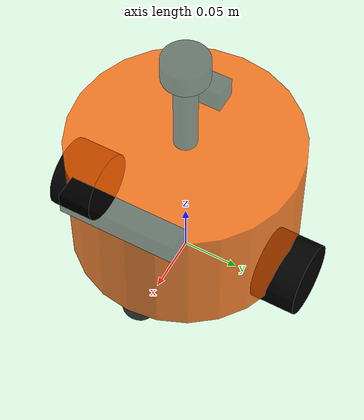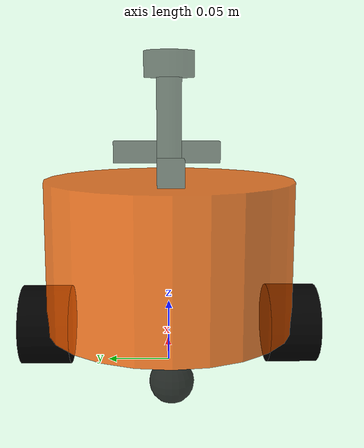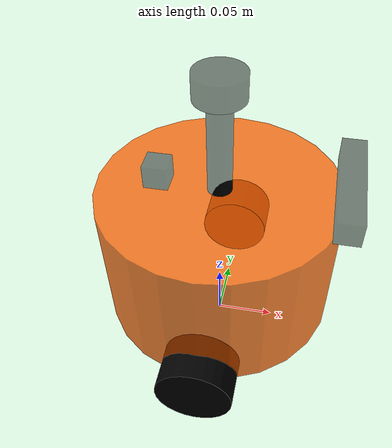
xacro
<?xml version="1.0"?>
<robot xmlns:xacro="http://www.ros.org/wiki/xacro" name="cloud_car">

<!-- base_link -->
<xacro:include filename="$(find cloud_car)/urdf/cloud_car_model/base.urdf.xacro"/>
<!-- 传感器 -->
<xacro:include filename="$(find cloud_car)/urdf/cloud_car_model/sensor/imu.urdf.xacro"/>
<xacro:include filename="$(find cloud_car)/urdf/cloud_car_model/sensor/camera.urdf.xacro"/>
<xacro:include filename="$(find cloud_car)/urdf/cloud_car_model/sensor/laser.urdf.xacro"/>
<!-- 执行器 -->
<xacro:include filename="$(find cloud_car)/urdf/cloud_car_model/actuator/wheel.urdf.xacro"/>
<xacro:include filename="$(find cloud_car)/urdf/cloud_car_model/actuator/caster.urdf.xacro"/>
<!-- gazebo插件 -->
<xacro:include filename="$(find cloud_car)/urdf/cloud_car_model/plugins/gazebo_control_plugin.xacro"/>
<xacro:include filename="$(find cloud_car)/urdf/cloud_car_model/plugins/gazebo_sensor_plugin.xacro"/>
<xacro:include filename="$(find cloud_car)/urdf/cloud_car_model/cloud_car_ros2_control.xacro"/>

<xacro:base_xacro length="0.12" radius="0.10"/>
<xacro:imu_xacro xyz="-0.05 0.0 0.07"/>
<xacro:camera_xacro xyz="0.10 0.0 0.075"/>
<xacro:laser_xacro xyz="0.0 0.0 0.10"/>

<xacro:wheel_xacro wheel_name="left" xyz="0.0 0.10 -0.06"/>
<xacro:wheel_xacro wheel_name="right" xyz="0.0 -0.10 -0.06"/>
<xacro:caster_xacro caster_name="front" xyz="0.08 0.0 -0.076"/>
<xacro:caster_xacro caster_name="back" xyz="-0.08 0.0 -0.076"/>

<xacro:gazebo_sensor_plugin/>
<xacro:cloud_car_ros2_control/>

</robot>

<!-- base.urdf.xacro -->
<robot xmlns:xacro="http://www.ros.org/wiki/xacro">
    <xacro:include filename="$(find cloud_car)/urdf/cloud_car_model/common_inertia.xacro"/>
    <xacro:macro name="base_xacro" params="length radius">
        <gazebo reference="base_link">
            <material>Gazebo/Orange</material>
        </gazebo>

        <link name="base_footprint"/>

        <!-- 机器人的身体部分 -->
        <link name="base_link">
            <!-- 部件的外观描述 -->
            <visual>
                <!-- 沿着自己几何中心的偏移和旋转 -->
                <origin xyz="0.0 0.0 0.0" rpy="0.0 0.0 0.0"/>
                <!-- 几何形状 -->
                <geometry>
                    <!-- 圆柱体 radius-半径 length-高 -->
                    <cylinder radius="${radius}" length="${length}"/>
                </geometry>
                <!-- 材质颜色 -->
                <material name="orange">
                    <!-- a-透明度 -->
                    <color rgba="1.0 0.384 0 0.8"/>
                </material>
            </visual>
            <collision>
                <!-- 沿着自己几何中心的偏移和旋转 -->
                <origin xyz="0.0 0.0 0.0" rpy="0.0 0.0 0.0"/>
                <!-- 几何形状 -->
                <geometry>
                    <!-- 圆柱体 radius-半径 length-高 -->
                    <cylinder radius="${radius}" length="${length}"/>
                </geometry>
                <!-- 材质颜色 -->
                <material name="orange">
                    <!-- a-透明度 -->
                    <color rgba="1.0 0.384 0 0.8"/>
                </material>
            </collision>
            <xacro:cylinder_inertia m="1.0" r="${radius}" h="${length}"/>
        </link>

        <joint name="base_joint" type="fixed">
            <origin xyz="0.0 0.0 ${length / 2.0 + 0.032 - 0.001}" rpy="0.0 0.0 0.0"/>
            <parent link="base_footprint"/>
            <child link="base_link"/>
        </joint>
    </xacro:macro>
</robot>

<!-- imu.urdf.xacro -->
<robot xmlns:xacro="http://www.ros.org/wiki/xacro">
    <xacro:include filename="$(find cloud_car)/urdf/cloud_car_model/common_inertia.xacro"/>
    <xacro:macro name="imu_xacro" params="xyz">
        <gazebo reference="imu_link">
            <material>Gazebo/Black</material>
        </gazebo>

        <link name="imu_link">
            <!-- 部件的外观描述 -->
            <visual>
                <!-- 沿着自己几何中心的偏移和旋转 -->
                <origin xyz="0.0 0.0 0.0" rpy="0.0 0.0 0.0"/>
                <!-- 几何形状 -->
                <geometry>
                    <box size="0.02 0.02 0.02"/>
                </geometry>
                <!-- 材质颜色 -->
                <material name="black">
                    <!-- a-透明度 -->
                    <color rgba="0.0 0.0 0.0 0.5"/>
                </material>
            </visual>
            <collision>
                <!-- 沿着自己几何中心的偏移和旋转 -->
                <origin xyz="0.0 0.0 0.0" rpy="0.0 0.0 0.0"/>
                <!-- 几何形状 -->
                <geometry>
                    <box size="0.02 0.02 0.02"/>
                </geometry>
                <!-- 材质颜色 -->
                <material name="black">
                    <!-- a-透明度 -->
                    <color rgba="0.0 0.0 0.0 0.5"/>
                </material>
            </collision>
            <xacro:box_inertia m="0.01" w="0.02" h="0.02" d="0.02"/>
        </link>

        <!-- 机器人的关节，用于组合机器人的部件 -->
        <joint name="imu_joint" type="fixed">
            <origin xyz="${xyz}" rpy="0.0 0.0 0.0"/>
            <parent link="base_link"/>
            <child link="imu_link"/>
        </joint>
    </xacro:macro>
</robot>

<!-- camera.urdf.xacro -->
<robot xmlns:xacro="http://www.ros.org/wiki/xacro">
    <xacro:include filename="$(find cloud_car)/urdf/cloud_car_model/common_inertia.xacro"/>
    <xacro:macro name="camera_xacro" params="xyz">
        <gazebo reference="camera_link">
            <material>Gazebo/Black</material>
        </gazebo>

        <link name="camera_link">
            <!-- 部件的外观描述 -->
            <visual>
                <!-- 沿着自己几何中心的偏移和旋转 -->
                <origin xyz="0.0 0.0 0.0" rpy="0.0 0.0 0.0"/>
                <!-- 几何形状 -->
                <geometry>
                    <box size="0.02 0.10 0.02"/>
                </geometry>
                <!-- 材质颜色 -->
                <material name="black">
                    <!-- a-透明度 -->
                    <color rgba="0.0 0.0 0.0 0.5"/>
                </material>
            </visual>
            <collision>
                <!-- 沿着自己几何中心的偏移和旋转 -->
                <origin xyz="0.0 0.0 0.0" rpy="0.0 0.0 0.0"/>
                <!-- 几何形状 -->
                <geometry>
                    <box size="0.02 0.10 0.02"/>
                </geometry>
                <!-- 材质颜色 -->
                <material name="black">
                    <!-- a-透明度 -->
                    <color rgba="0.0 0.0 0.0 0.5"/>
                </material>
            </collision>
            <xacro:box_inertia m="0.01" w="0.02" h="0.10" d="0.02" />
        </link>

        <link name="camera_optical_link">
        </link>

        <!-- 机器人的关节，用于组合机器人的部件 -->
        <joint name="camera_joint" type="fixed">
            <origin xyz="${xyz}" rpy="0.0 0.0 0.0"/>
            <parent link="base_link"/>
            <child link="camera_link"/>
        </joint>

        <joint name="camera_optical_joint" type="fixed">
            <origin xyz="0 0 0 " rpy="${-pi/2} 0 ${-pi/2}"/>
            <parent link="camera_link"/>
            <child link="camera_optical_link"/>
        </joint>
    </xacro:macro>
</robot>

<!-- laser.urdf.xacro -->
<robot xmlns:xacro="http://www.ros.org/wiki/xacro">
    <xacro:include filename="$(find cloud_car)/urdf/cloud_car_model/common_inertia.xacro"/>
    <xacro:macro name="laser_xacro" params="xyz">
        <gazebo reference="laser_cylinder_link">
            <material>Gazebo/Black</material>
        </gazebo>
        <gazebo reference="laser_link">
            <material>Gazebo/Black</material>
        </gazebo>

        <!-- 雷达支撑杆 -->
        <link name="laser_cylinder_link">
            <!-- 部件的外观描述 -->
            <visual>
                <!-- 沿着自己几何中心的偏移和旋转 -->
                <origin xyz="0.0 0.0 0.0" rpy="0.0 0.0 0.0"/>
                <!-- 几何形状 -->
                <geometry>
                    <cylinder radius="0.01" length="0.1"/>
                </geometry>
                <!-- 材质颜色 -->
                <material name="black">
                    <!-- a-透明度 -->
                    <color rgba="0.0 0.0 0.0 0.5"/>
                </material>
            </visual>
            <collision>
                <!-- 沿着自己几何中心的偏移和旋转 -->
                <origin xyz="0.0 0.0 0.0" rpy="0.0 0.0 0.0"/>
                <!-- 几何形状 -->
                <geometry>
                    <cylinder radius="0.01" length="0.1"/>
                </geometry>
                <!-- 材质颜色 -->
                <material name="black">
                    <!-- a-透明度 -->
                    <color rgba="0.0 0.0 0.0 0.5"/>
                </material>
            </collision>
            <xacro:cylinder_inertia m="0.01" r="0.01" h="0.1" />
        </link>

        <link name="laser_link">
            <!-- 部件的外观描述 -->
            <visual>
                <!-- 沿着自己几何中心的偏移和旋转 -->
                <origin xyz="0.0 0.0 0.0" rpy="0.0 0.0 0.0"/>
                <!-- 几何形状 -->
                <geometry>
                    <cylinder radius="0.02" length="0.02"/>
                </geometry>
                <!-- 材质颜色 -->
                <material name="black">
                    <!-- a-透明度 -->
                    <color rgba="0.0 0.0 0.0 0.5"/>
                </material>
            </visual>
            <collision>
                <!-- 沿着自己几何中心的偏移和旋转 -->
                <origin xyz="0.0 0.0 0.0" rpy="0.0 0.0 0.0"/>
                <!-- 几何形状 -->
                <geometry>
                    <cylinder radius="0.02" length="0.02"/>
                </geometry>
                <!-- 材质颜色 -->
                <material name="black">
                    <!-- a-透明度 -->
                    <color rgba="0.0 0.0 0.0 0.5"/>
                </material>
            </collision>
            <xacro:cylinder_inertia m="0.03" r="0.02" h="0.02" />
        </link>

        <!-- 机器人的关节，用于组合机器人的部件 -->
        <joint name="laser_cylinder_joint" type="fixed">
            <origin xyz="${xyz}" rpy="0.0 0.0 0.0"/>
            <parent link="base_link"/>
            <child link="laser_cylinder_link"/>
        </joint>

        <joint name="laser_joint" type="fixed">
            <origin xyz="0.0 0.0 0.05" rpy="0.0 0.0 0.0"/>
            <parent link="laser_cylinder_link"/>
            <child link="laser_link"/>
        </joint>
    </xacro:macro>
</robot>

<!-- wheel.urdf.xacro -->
<robot xmlns:xacro="http://www.ros.org/wiki/xacro">
    <xacro:include filename="$(find cloud_car)/urdf/cloud_car_model/common_inertia.xacro"/>
    <xacro:macro name="wheel_xacro" params="wheel_name xyz">
        <gazebo reference="${wheel_name}_wheel_link">
            <material>Gazebo/Blue</material>
            <!-- 切向摩擦 -->
            <mu1 value="20.0" />
            <!-- 法向摩擦 -->
            <mu2 value="20.0" />
            <!-- 刚度系数 -->
            <kp value="1000000000.0" />
            <!-- 阻尼系数 -->
            <kd value="1.0" />
        </gazebo>

        <link name="${wheel_name}_wheel_link">
            <visual>
                <origin xyz="0 0 0" rpy="1.57079 0 0" />
                <geometry>
                    <cylinder length="0.04" radius="0.032" />
                </geometry>
                <material name="black">
                    <color rgba="0 0 0 1"/>
                </material>
            </visual>
            <collision>
                <origin xyz="0 0 0" rpy="1.57079 0 0" />
                <geometry>
                    <cylinder length="0.04" radius="0.032" />
                </geometry>
                <material name="black">
                    <color rgba="0.0 0.0 0.0 0.8"/>
                </material>
            </collision>
            <xacro:cylinder_inertia m="0.1" h="0.04" r="0.032"/>
        </link>

        <joint name="${wheel_name}_wheel_joint" type="continuous">
            <parent link="base_link" />
            <child link="${wheel_name}_wheel_link" />
            <origin xyz="${xyz}" />
            <axis xyz="0 1 0" />
        </joint>
    </xacro:macro>
</robot>

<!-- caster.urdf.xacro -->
<robot xmlns:xacro="http://www.ros.org/wiki/xacro">
    <xacro:include filename="$(find cloud_car)/urdf/cloud_car_model/common_inertia.xacro"/>
    <xacro:macro name="caster_xacro" params="caster_name xyz">
        <gazebo reference="${caster_name}_caster_link">
            <material>Gazebo/Blue</material>
            <mu1 value="0.0" />
            <mu2 value="0.0" />
            <kp value="1000000000.0" />
            <kd value="1.0" />
        </gazebo>

        <link name="${caster_name}_caster_link">
            <visual>
                <origin xyz="0 0 0" rpy="0 0 0" />
                <geometry>
                    <sphere radius="0.016" />
                </geometry>
                <material name="black">
                    <color rgba="0.0 0.0 0.0 0.8"/>
                </material>
            </visual>
            <collision>
                <origin xyz="0 0 0" rpy="0 0 0" />
                <geometry>
                    <sphere radius="0.016" />
                </geometry>
                <material name="black">
                    <color rgba="0.0 0.0 0.0 0.8"/>
                </material>
            </collision>
            <xacro:sphere_inertia m="0.01" r="0.016" />
        </link>

        <joint name="${caster_name}_caster_joint" type="fixed">
            <parent link="base_link" />
            <child link="${caster_name}_caster_link" />
            <origin xyz="${xyz}" />
        </joint>

    </xacro:macro>
</robot>
